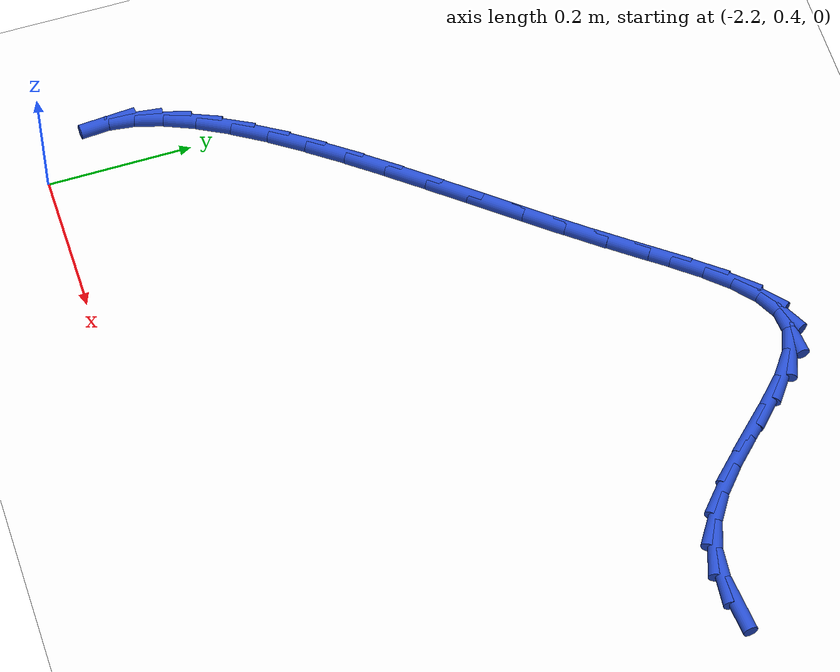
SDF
<sdf version="1.6">
 <world name="default">
  <model name="ground_plane">
   <static>1</static>
   <link name="link">
    <collision name="collision">
     <geometry><plane><normal>0 0 1</normal><size>100 100</size></plane></geometry>
     <surface><friction><ode><mu>100</mu><mu2>50</mu2></ode></friction></surface>
    </collision>
    <visual name="visual">
     <cast_shadows>0</cast_shadows>
     <geometry><plane><normal>0 0 1</normal><size>100 100</size></plane></geometry>
     <material>
      <script><uri>file://media/materials/scripts/gazebo.material</uri><name>Gazebo/WhiteGlow</name></script>
     </material>
    </visual>
   </link>
  </model>
  <model name="line">
   <link name="link_45">
    <pose>-1.3107340303348591 1.0725813383178884 0.01 0 1.57 0.09453035985875118</pose>
    <collision name="collision">
     <geometry><cylinder><radius>0.01</radius><length>0.08</length></cylinder></geometry>
    </collision>
    <visual name="visual">
     <material>
      <script><name>Gazebo/Blue</name><uri>file://media/materials/scripts/gazebo.material</uri></script>
     </material>
     <geometry><cylinder><radius>0.01</radius><length>0.08</length></cylinder></geometry>
    </visual>
   </link>
   <link name="link_46">
    <pose>-1.3536879975682719 1.068508746225746 0.01 0 1.57 -0.09063563532409251</pose>
    <collision name="collision">
     <geometry><cylinder><radius>0.01</radius><length>0.08</length></cylinder></geometry>
    </collision>
    <visual name="visual">
     <material>
      <script><name>Gazebo/Blue</name><uri>file://media/materials/scripts/gazebo.material</uri></script>
     </material>
     <geometry><cylinder><radius>0.01</radius><length>0.08</length></cylinder></geometry>
    </visual>
   </link>
   <link name="link_47">
    <pose>-1.395425418129895 1.07230203661199 0.01 0 1.57 -0.32336743059411904</pose>
    <collision name="collision">
     <geometry><cylinder><radius>0.01</radius><length>0.08</length></cylinder></geometry>
    </collision>
    <visual name="visual">
     <material>
      <script><name>Gazebo/Blue</name><uri>file://media/materials/scripts/gazebo.material</uri></script>
     </material>
     <geometry><cylinder><radius>0.01</radius><length>0.08</length></cylinder></geometry>
    </visual>
   </link>
   <link name="link_48">
    <pose>-1.4356227790329081 1.0857734116472186 0.01 0 1.57 -0.5563269946003826</pose>
    <collision name="collision">
     <geometry><cylinder><radius>0.01</radius><length>0.08</length></cylinder></geometry>
    </collision>
    <visual name="visual">
     <material>
      <script><name>Gazebo/Blue</name><uri>file://media/materials/scripts/gazebo.material</uri></script>
     </material>
     <geometry><cylinder><radius>0.01</radius><length>0.08</length></cylinder></geometry>
    </visual>
   </link>
   <link name="link_49">
    <pose>-1.4740558877256191 1.1096728300561989 0.01 0 1.57 -0.7055172911564553</pose>
    <collision name="collision">
     <geometry><cylinder><radius>0.01</radius><length>0.08</length></cylinder></geometry>
    </collision>
    <visual name="visual">
     <material>
      <script><name>Gazebo/Blue</name><uri>file://media/materials/scripts/gazebo.material</uri></script>
     </material>
     <geometry><cylinder><radius>0.01</radius><length>0.08</length></cylinder></geometry>
    </visual>
   </link>
   <link name="link_50">
    <pose>-1.5108500111330263 1.1410127413771438 0.01 0 1.57 -0.7799104085364337</pose>
    <collision name="collision">
     <geometry><cylinder><radius>0.01</radius><length>0.08</length></cylinder></geometry>
    </collision>
    <visual name="visual">
     <material>
      <script><name>Gazebo/Blue</name><uri>file://media/materials/scripts/gazebo.material</uri></script>
     </material>
     <geometry><cylinder><radius>0.01</radius><length>0.08</length></cylinder></geometry>
    </visual>
   </link>
   <link name="link_51">
    <pose>-1.5462072344220585 1.1759840152397094 0.01 0 1.57 -0.7951357761220991</pose>
    <collision name="collision">
     <geometry><cylinder><radius>0.01</radius><length>0.08</length></cylinder></geometry>
    </collision>
    <visual name="visual">
     <material>
      <script><name>Gazebo/Blue</name><uri>file://media/materials/scripts/gazebo.material</uri></script>
     </material>
     <geometry><cylinder><radius>0.01</radius><length>0.08</length></cylinder></geometry>
    </visual>
   </link>
   <link name="link_52">
    <pose>-1.580329642759644 1.2107775212735508 0.01 0 1.57 -0.749682474816004</pose>
    <collision name="collision">
     <geometry><cylinder><radius>0.01</radius><length>0.08</length></cylinder></geometry>
    </collision>
    <visual name="visual">
     <material>
      <script><name>Gazebo/Blue</name><uri>file://media/materials/scripts/gazebo.material</uri></script>
     </material>
     <geometry><cylinder><radius>0.01</radius><length>0.08</length></cylinder></geometry>
    </visual>
   </link>
   <link name="link_53">
    <pose>-1.6134193213127122 1.2415841291083227 0.01 0 1.57 -0.6196008008630823</pose>
    <collision name="collision">
     <geometry><cylinder><radius>0.01</radius><length>0.08</length></cylinder></geometry>
    </collision>
    <visual name="visual">
     <material>
      <script><name>Gazebo/Blue</name><uri>file://media/materials/scripts/gazebo.material</uri></script>
     </material>
     <geometry><cylinder><radius>0.01</radius><length>0.08</length></cylinder></geometry>
    </visual>
   </link>
   <link name="link_54">
    <pose>-1.64567835524819 1.2645947083736808 0.01 0 1.57 -0.3460718468006396</pose>
    <collision name="collision">
     <geometry><cylinder><radius>0.01</radius><length>0.08</length></cylinder></geometry>
    </collision>
    <visual name="visual">
     <material>
      <script><name>Gazebo/Blue</name><uri>file://media/materials/scripts/gazebo.material</uri></script>
     </material>
     <geometry><cylinder><radius>0.01</radius><length>0.08</length></cylinder></geometry>
    </visual>
   </link>
   <link name="link_55">
    <pose>-1.6773088297330074 1.276000128699281 0.01 0 1.57 0.09871644941660133</pose>
    <collision name="collision">
     <geometry><cylinder><radius>0.01</radius><length>0.08</length></cylinder></geometry>
    </collision>
    <visual name="visual">
     <material>
      <script><name>Gazebo/Blue</name><uri>file://media/materials/scripts/gazebo.material</uri></script>
     </material>
     <geometry><cylinder><radius>0.01</radius><length>0.08</length></cylinder></geometry>
    </visual>
   </link>
   <link name="link_56">
    <pose>-1.7085328754849136 1.2729077502227597 0.01 0 1.57 0.4836306630999242</pose>
    <collision name="collision">
     <geometry><cylinder><radius>0.01</radius><length>0.08</length></cylinder></geometry>
    </collision>
    <visual name="visual">
     <material>
      <script><name>Gazebo/Blue</name><uri>file://media/materials/scripts/gazebo.material</uri></script>
     </material>
     <geometry><cylinder><radius>0.01</radius><length>0.08</length></cylinder></geometry>
    </visual>
   </link>
   <link name="link_57">
    <pose>-1.7396630031520222 1.2565571392268893 0.01 0 1.57 0.7143501030441997</pose>
    <collision name="collision">
     <geometry><cylinder><radius>0.01</radius><length>0.08</length></cylinder></geometry>
    </collision>
    <visual name="visual">
     <material>
      <script><name>Gazebo/Blue</name><uri>file://media/materials/scripts/gazebo.material</uri></script>
     </material>
     <geometry><cylinder><radius>0.01</radius><length>0.08</length></cylinder></geometry>
    </visual>
   </link>
   <link name="link_58">
    <pose>-1.7710371839183736 1.2293519277620844 0.01 0 1.57 0.8400660283423589</pose>
    <collision name="collision">
     <geometry><cylinder><radius>0.01</radius><length>0.08</length></cylinder></geometry>
    </collision>
    <visual name="visual">
     <material>
      <script><name>Gazebo/Blue</name><uri>file://media/materials/scripts/gazebo.material</uri></script>
     </material>
     <geometry><cylinder><radius>0.01</radius><length>0.08</length></cylinder></geometry>
    </visual>
   </link>
   <link name="link_59">
    <pose>-1.8029933904034063 1.1936958135057305 0.01 0 1.57 0.9032084983663731</pose>
    <collision name="collision">
     <geometry><cylinder><radius>0.01</radius><length>0.08</length></cylinder></geometry>
    </collision>
    <visual name="visual">
     <material>
      <script><name>Gazebo/Blue</name><uri>file://media/materials/scripts/gazebo.material</uri></script>
     </material>
     <geometry><cylinder><radius>0.01</radius><length>0.08</length></cylinder></geometry>
    </visual>
   </link>
   <link name="link_60">
    <pose>-1.835869595226559 1.1519924941352129 0.01 0 1.57 0.9255466627865204</pose>
    <collision name="collision">
     <geometry><cylinder><radius>0.01</radius><length>0.08</length></cylinder></geometry>
    </collision>
    <visual name="visual">
     <material>
      <script><name>Gazebo/Blue</name><uri>file://media/materials/scripts/gazebo.material</uri></script>
     </material>
     <geometry><cylinder><radius>0.01</radius><length>0.08</length></cylinder></geometry>
    </visual>
   </link>
   <link name="link_61">
    <pose>-1.8700037710072686 1.1066456673279181 0.01 0 1.57 0.9177546282713047</pose>
    <collision name="collision">
     <geometry><cylinder><radius>0.01</radius><length>0.08</length></cylinder></geometry>
    </collision>
    <visual name="visual">
     <material>
      <script><name>Gazebo/Blue</name><uri>file://media/materials/scripts/gazebo.material</uri></script>
     </material>
     <geometry><cylinder><radius>0.01</radius><length>0.08</length></cylinder></geometry>
    </visual>
   </link>
   <link name="link_62">
    <pose>-1.9057011619695399 1.0599833301702808 0.01 0 1.57 0.9015208504675113</pose>
    <collision name="collision">
     <geometry><cylinder><radius>0.01</radius><length>0.08</length></cylinder></geometry>
    </collision>
    <visual name="visual">
     <material>
      <script><name>Gazebo/Blue</name><uri>file://media/materials/scripts/gazebo.material</uri></script>
     </material>
     <geometry><cylinder><radius>0.01</radius><length>0.08</length></cylinder></geometry>
    </visual>
   </link>
   <link name="link_63">
    <pose>-1.9427534096001557 1.0131455195629437 0.01 0 1.57 0.8916776237314339</pose>
    <collision name="collision">
     <geometry><cylinder><radius>0.01</radius><length>0.08</length></cylinder></geometry>
    </collision>
    <visual name="visual">
     <material>
      <script><name>Gazebo/Blue</name><uri>file://media/materials/scripts/gazebo.material</uri></script>
     </material>
     <geometry><cylinder><radius>0.01</radius><length>0.08</length></cylinder></geometry>
    </visual>
   </link>
   <link name="link_64">
    <pose>-1.9805441973545113 0.9663286678195083 0.01 0 1.57 0.8882399861339322</pose>
    <collision name="collision">
     <geometry><cylinder><radius>0.01</radius><length>0.08</length></cylinder></geometry>
    </collision>
    <visual name="visual">
     <material>
      <script><name>Gazebo/Blue</name><uri>file://media/materials/scripts/gazebo.material</uri></script>
     </material>
     <geometry><cylinder><radius>0.01</radius><length>0.08</length></cylinder></geometry>
    </visual>
   </link>
   <link name="link_65">
    <pose>-2.018445961106478 0.9197031916620023 0.01 0 1.57 0.8911424717440584</pose>
    <collision name="collision">
     <geometry><cylinder><radius>0.01</radius><length>0.08</length></cylinder></geometry>
    </collision>
    <visual name="visual">
     <material>
      <script><name>Gazebo/Blue</name><uri>file://media/materials/scripts/gazebo.material</uri></script>
     </material>
     <geometry><cylinder><radius>0.01</radius><length>0.08</length></cylinder></geometry>
    </visual>
   </link>
   <link name="link_66">
    <pose>-2.0558311367299225 0.8734395078124535 0.01 0 1.57 0.9006610360569723</pose>
    <collision name="collision">
     <geometry><cylinder><radius>0.01</radius><length>0.08</length></cylinder></geometry>
    </collision>
    <visual name="visual">
     <material>
      <script><name>Gazebo/Blue</name><uri>file://media/materials/scripts/gazebo.material</uri></script>
     </material>
     <geometry><cylinder><radius>0.01</radius><length>0.08</length></cylinder></geometry>
    </visual>
   </link>
   <link name="link_67">
    <pose>-2.0920721600987133 0.8277080329928896 0.01 0 1.57 0.9174526743277219</pose>
    <collision name="collision">
     <geometry><cylinder><radius>0.01</radius><length>0.08</length></cylinder></geometry>
    </collision>
    <visual name="visual">
     <material>
      <script><name>Gazebo/Blue</name><uri>file://media/materials/scripts/gazebo.material</uri></script>
     </material>
     <geometry><cylinder><radius>0.01</radius><length>0.08</length></cylinder></geometry>
    </visual>
   </link>
   <link name="link_68">
    <pose>-2.126541467086721 0.782679183925339 0.01 0 1.57 0.9426415303637755</pose>
    <collision name="collision">
     <geometry><cylinder><radius>0.01</radius><length>0.08</length></cylinder></geometry>
    </collision>
    <visual name="visual">
     <material>
      <script><name>Gazebo/Blue</name><uri>file://media/materials/scripts/gazebo.material</uri></script>
     </material>
     <geometry><cylinder><radius>0.01</radius><length>0.08</length></cylinder></geometry>
    </visual>
   </link>
   <link name="link_69">
    <pose>-2.158611493567814 0.738523377331829 0.01 0 1.57 0.9779659179102373</pose>
    <collision name="collision">
     <geometry><cylinder><radius>0.01</radius><length>0.08</length></cylinder></geometry>
    </collision>
    <visual name="visual">
     <material>
      <script><name>Gazebo/Blue</name><uri>file://media/materials/scripts/gazebo.material</uri></script>
     </material>
     <geometry><cylinder><radius>0.01</radius><length>0.08</length></cylinder></geometry>
    </visual>
   </link>
   <link name="link_70">
    <pose>-2.187654675415859 0.6954110299343876 0.01 0 1.57 1.0260064252039813</pose>
    <collision name="collision">
     <geometry><cylinder><radius>0.01</radius><length>0.08</length></cylinder></geometry>
    </collision>
    <visual name="visual">
     <material>
      <script><name>Gazebo/Blue</name><uri>file://media/materials/scripts/gazebo.material</uri></script>
     </material>
     <geometry><cylinder><radius>0.01</radius><length>0.08</length></cylinder></geometry>
    </visual>
   </link>
   <link name="link_71">
    <pose>-2.213043448504727 0.6535125584550425 0.01 0 1.57 1.0905113051900908</pose>
    <collision name="collision">
     <geometry><cylinder><radius>0.01</radius><length>0.08</length></cylinder></geometry>
    </collision>
    <visual name="visual">
     <material>
      <script><name>Gazebo/Blue</name><uri>file://media/materials/scripts/gazebo.material</uri></script>
     </material>
     <geometry><cylinder><radius>0.01</radius><length>0.08</length></cylinder></geometry>
    </visual>
   </link>
   <link name="link_72">
    <pose>-2.234150248708285 0.6129983796158223 0.01 0 1.57 1.1767895079724127</pose>
    <collision name="collision">
     <geometry><cylinder><radius>0.01</radius><length>0.08</length></cylinder></geometry>
    </collision>
    <visual name="visual">
     <material>
      <script><name>Gazebo/Blue</name><uri>file://media/materials/scripts/gazebo.material</uri></script>
     </material>
     <geometry><cylinder><radius>0.01</radius><length>0.08</length></cylinder></geometry>
    </visual>
   </link>
   <link name="link_73">
    <pose>-2.2503475119004026 0.574038910138754 0.01 0 1.57 1.2919559982350095</pose>
    <collision name="collision">
     <geometry><cylinder><radius>0.01</radius><length>0.08</length></cylinder></geometry>
    </collision>
    <visual name="visual">
     <material>
      <script><name>Gazebo/Blue</name><uri>file://media/materials/scripts/gazebo.material</uri></script>
     </material>
     <geometry><cylinder><radius>0.01</radius><length>0.08</length></cylinder></geometry>
    </visual>
   </link>
   <link name="link_74">
    <pose>-2.2610076739549494 0.5368045667458655 0.01 0 1.57 1.4442645916260466</pose>
    <collision name="collision">
     <geometry><cylinder><radius>0.01</radius><length>0.08</length></cylinder></geometry>
    </collision>
    <visual name="visual">
     <material>
      <script><name>Gazebo/Blue</name><uri>file://media/materials/scripts/gazebo.material</uri></script>
     </material>
     <geometry><cylinder><radius>0.01</radius><length>0.08</length></cylinder></geometry>
    </visual>
   </link>
   <link name="link_75">
    <pose>-2.2655031707457924 0.5014657661591853 0.01 0 1.57 -1.5018784007800574</pose>
    <collision name="collision">
     <geometry><cylinder><radius>0.01</radius><length>0.08</length></cylinder></geometry>
    </collision>
    <visual name="visual">
     <material>
      <script><name>Gazebo/Blue</name><uri>file://media/materials/scripts/gazebo.material</uri></script>
     </material>
     <geometry><cylinder><radius>0.01</radius><length>0.08</length></cylinder></geometry>
    </visual>
   </link>
  </model>
 </world>
</sdf>
